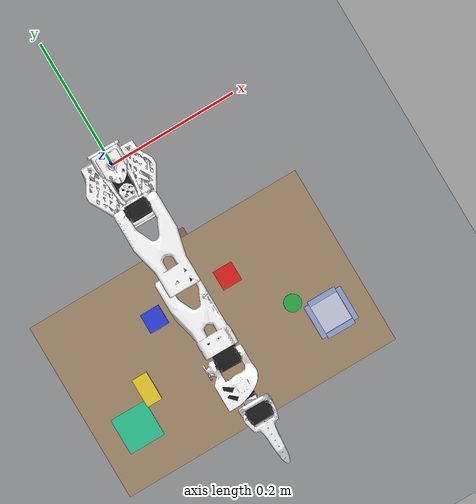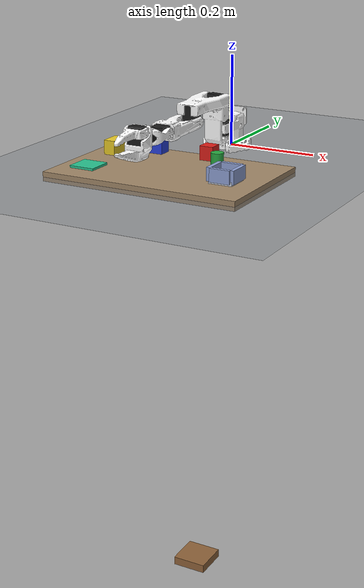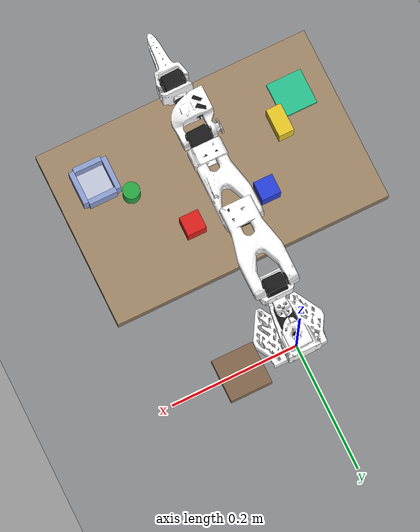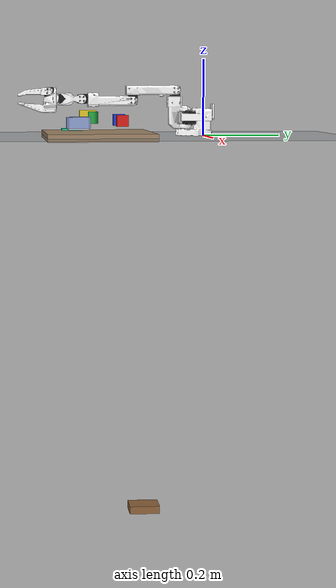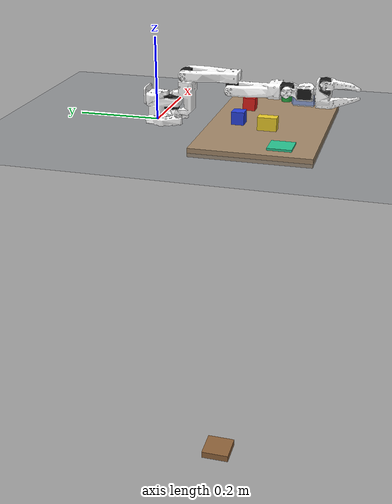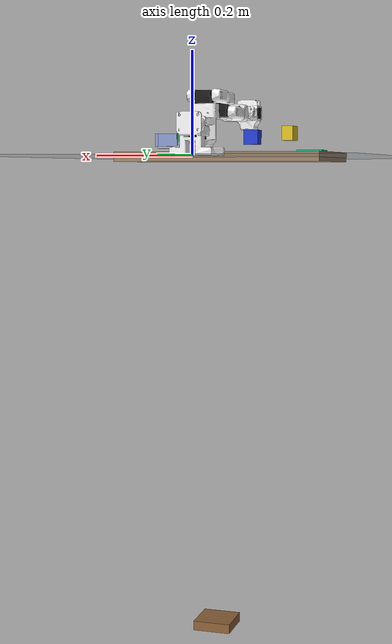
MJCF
<mujoco model="so100_tabletop">
  <include file="so_arm100.xml"/>

  <option timestep="0.002" gravity="0 0 -9.81"/>

  <visual>
    <headlight diffuse="0.6 0.6 0.6" ambient="0.35 0.35 0.35" specular="0 0 0"/>
    <global azimuth="140" elevation="-25" offwidth="512" offheight="512"/>
  </visual>

  <asset>
    <texture type="skybox" builtin="gradient" rgb1="0.75 0.78 0.82" rgb2="0.35 0.38 0.42" width="512" height="512"/>
    <material name="table_mat" rgba="0.62 0.52 0.40 1"/>
    <material name="floor_mat" rgba="0.45 0.47 0.50 1"/>
  </asset>

  <worldbody>
    <light name="key" pos="0.2 -0.1 0.8" dir="0 0 -1" directional="true" diffuse="0.8 0.8 0.8"/>
    <geom name="floor" type="plane" size="0 0 0.05" material="floor_mat"/>
    <geom name="table" type="box" pos="0 -0.28 0.0" size="0.22 0.14 0.01" material="table_mat" friction="1 0.05 0.001"/>

    <body name="red_cube" pos="0.06 -0.22 0.04">
      <freejoint name="red_cube_j"/>
      <geom name="red_cube" type="box" size="0.015 0.015 0.015" mass="0.04" rgba="0.85 0.12 0.10 1" friction="1.2 0.05 0.001"/>
    </body>
    <body name="blue_cube" pos="-0.06 -0.22 0.04">
      <freejoint name="blue_cube_j"/>
      <geom name="blue_cube" type="box" size="0.015 0.015 0.015" mass="0.04" rgba="0.15 0.25 0.85 1" friction="1.2 0.05 0.001"/>
    </body>
    <body name="green_cylinder" pos="0.12 -0.30 0.05">
      <freejoint name="green_cylinder_j"/>
      <geom name="green_cylinder" type="cylinder" size="0.013 0.015" mass="0.04" rgba="0.15 0.65 0.25 1" condim="6" friction="1.0 0.05 0.02"/>
    </body>
    <body name="yellow_block" pos="-0.12 -0.30 0.05">
      <freejoint name="yellow_block_j"/>
      <geom name="yellow_block" type="box" size="0.012 0.022 0.015" mass="0.05" rgba="0.90 0.78 0.15 1" friction="1.2 0.05 0.001"/>
    </body>

    <body name="bowl" mocap="true" pos="0.16 -0.34 0.02">
      <geom name="bowl_floor" type="box" size="0.026 0.026 0.004" pos="0 0 0.004" rgba="0.75 0.78 0.85 1" friction="1 0.05 0.001"/>
      <geom name="bowl_px" type="box" size="0.004 0.026 0.014" pos="0.026 0 0.018" rgba="0.55 0.62 0.82 1"/>
      <geom name="bowl_nx" type="box" size="0.004 0.026 0.014" pos="-0.026 0 0.018" rgba="0.55 0.62 0.82 1"/>
      <geom name="bowl_py" type="box" size="0.022 0.004 0.014" pos="0 0.026 0.018" rgba="0.55 0.62 0.82 1"/>
      <geom name="bowl_ny" type="box" size="0.022 0.004 0.014" pos="0 -0.026 0.018" rgba="0.55 0.62 0.82 1"/>
    </body>
    <body name="marker" mocap="true" pos="-0.16 -0.34 0.012">
      <geom name="marker" type="box" size="0.028 0.028 0.003" rgba="0.15 0.75 0.55 1"/>
    </body>
    <body name="platform" mocap="true" pos="0 -0.16 -1">
      <geom name="platform" type="box" size="0.04 0.04 0.01" rgba="0.55 0.38 0.22 1" friction="1.2 0.05 0.001"/>
    </body>

    <camera name="main" mode="fixed" pos="0.48 -0.18 0.22" xyaxes="0 1 0 -0.3 0 0.95"/>
    <camera name="watch" mode="fixed" pos="0.48 -0.18 0.22" xyaxes="0 1 0 -0.3 0 0.95"/>
  </worldbody>
</mujoco>

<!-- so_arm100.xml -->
<!-- Modified from Google DeepMind MuJoCo Menagerie's trs_so_arm100 model for this tabletop experiment. -->
<mujoco model="so_arm100">
  <compiler angle="radian" meshdir="assets/"/>

  <option cone="elliptic" impratio="10"/>

  <asset>
    <material name="white" rgba="1 1 1 1"/>
    <material name="black" rgba="0.1 0.1 0.1 1"/>

    <mesh name="Base" file="Base.stl"/>
    <mesh name="Base_Motor" file="Base_Motor.stl"/>
    <mesh name="Rotation_Pitch" file="Rotation_Pitch.stl"/>
    <mesh name="Rotation_Pitch_Motor" file="Rotation_Pitch_Motor.stl"/>
    <mesh name="Upper_Arm" file="Upper_Arm.stl"/>
    <mesh name="Upper_Arm_Motor" file="Upper_Arm_Motor.stl"/>
    <mesh name="Lower_Arm" file="Lower_Arm.stl"/>
    <mesh name="Lower_Arm_Motor" file="Lower_Arm_Motor.stl"/>
    <mesh name="Wrist_Pitch_Roll" file="Wrist_Pitch_Roll.stl"/>
    <mesh name="Wrist_Pitch_Roll_Motor" file="Wrist_Pitch_Roll_Motor.stl"/>
    <mesh name="Fixed_Jaw" file="Fixed_Jaw.stl"/>
    <mesh name="Fixed_Jaw_Motor" file="Fixed_Jaw_Motor.stl"/>
    <mesh name="Fixed_Jaw_Collision_1" file="Fixed_Jaw_Collision_1.stl"/>
    <mesh name="Fixed_Jaw_Collision_2" file="Fixed_Jaw_Collision_2.stl"/>
    <mesh name="Moving_Jaw" file="Moving_Jaw.stl"/>
    <mesh name="Moving_Jaw_Collision_1" file="Moving_Jaw_Collision_1.stl"/>
    <mesh name="Moving_Jaw_Collision_2" file="Moving_Jaw_Collision_2.stl"/>
    <mesh name="Moving_Jaw_Collision_3" file="Moving_Jaw_Collision_3.stl"/>
  </asset>

  <default>
    <default class="so_arm100">
      <joint frictionloss="0.1" armature="0.1"/>
      <position kp="400" dampratio="1" forcerange="-3.5 3.5"/>
      <default class="Rotation">
        <joint axis="0 1 0" range="-1.92 1.92"/>
      </default>
      <default class="Pitch">
        <joint axis="1 0 0" range="-3.32 0.174"/>
      </default>
      <default class="Elbow">
        <joint axis="1 0 0" range="-0.174 3.14"/>
      </default>
      <default class="Wrist_Pitch">
        <joint axis="1 0 0" range="-1.66 1.66"/>
      </default>
      <default class="Wrist_Roll">
        <joint axis="0 1 0" range="-2.79 2.79"/>
      </default>
      <default class="Jaw">
        <joint axis="0 0 1" range="-0.174 1.75"/>
      </default>
      <default class="visual">
        <geom type="mesh" contype="0" conaffinity="0" density="0" group="2" material="white"/>
        <default class="motor_visual">
          <geom material="black"/>
        </default>
      </default>
      <default class="collision">
        <geom group="3" type="mesh" material="white"/>
        <default class="finger_collision">
          <geom type="box" solimp="2 1 0.01" solref="0.01 1" friction="1 0.005 0.0001"/>
        </default>
      </default>
    </default>
  </default>

  <worldbody>
    <body name="Base" childclass="so_arm100">
      <geom type="mesh" mesh="Base" class="visual"/>
      <geom type="mesh" mesh="Base_Motor" class="motor_visual"/>
      <geom type="mesh" mesh="Base" class="collision"/>
      <body name="Rotation_Pitch" pos="0 -0.0452 0.0165" quat="0.707105 0.707108 0 0">
        <inertial pos="-9.07886e-05 0.0590972 0.031089" quat="0.363978 0.441169 -0.623108 0.533504" mass="0.119226"
          diaginertia="5.94278e-05 5.89975e-05 3.13712e-05"/>
        <joint name="Rotation" class="Rotation"/>
        <geom type="mesh" mesh="Rotation_Pitch" class="visual"/>
        <geom type="mesh" mesh="Rotation_Pitch_Motor" class="motor_visual"/>
        <geom type="mesh" mesh="Rotation_Pitch" class="collision"/>
        <body name="Upper_Arm" pos="0 0.1025 0.0306" euler="1.57079 0 0">
          <inertial pos="-1.72052e-05 0.0701802 0.00310545" quat="0.50104 0.498994 -0.493562 0.50632" mass="0.162409"
            diaginertia="0.000213312 0.000167164 7.01522e-05"/>
          <joint name="Pitch" class="Pitch"/>
          <geom type="mesh" mesh="Upper_Arm" class="visual"/>
          <geom type="mesh" mesh="Upper_Arm_Motor" class="motor_visual"/>
          <geom type="mesh" mesh="Upper_Arm" class="collision"/>
          <body name="Lower_Arm" pos="0 0.11257 0.028" euler="-1.57079 0 0">
            <inertial pos="-0.00339604 0.00137796 0.0768007" quat="0.701995 0.0787996 0.0645626 0.704859"
              mass="0.147968" diaginertia="0.000138803 0.000107748 4.84242e-05"/>
            <joint name="Elbow" class="Elbow"/>
            <geom type="mesh" mesh="Lower_Arm" class="visual"/>
            <geom type="mesh" mesh="Lower_Arm_Motor" class="motor_visual"/>
            <geom type="mesh" mesh="Lower_Arm" class="collision"/>
            <body name="Wrist_Pitch_Roll" pos="0 0.0052 0.1349" euler="-1.57079 0 0">
              <inertial pos="-0.00852653 -0.0352279 -2.34622e-05" quat="-0.0522806 0.705235 0.0549524 0.704905"
                mass="0.0661321" diaginertia="3.45403e-05 2.39041e-05 1.94704e-05"/>
              <joint name="Wrist_Pitch" class="Wrist_Pitch"/>
              <geom type="mesh" mesh="Wrist_Pitch_Roll" class="visual"/>
              <geom type="mesh" mesh="Wrist_Pitch_Roll_Motor" class="motor_visual"/>
              <geom type="mesh" mesh="Wrist_Pitch_Roll" class="collision"/>
              <body name="Fixed_Jaw" pos="0 -0.0601 0" euler="0 1.57079 0">
                <inertial pos="0.00552377 -0.0280167 0.000483583" quat="0.41836 0.620891 -0.350644 0.562599"
                  mass="0.0929859" diaginertia="5.03136e-05 4.64098e-05 2.72961e-05"/>
                <joint name="Wrist_Roll" class="Wrist_Roll"/>
                <geom type="mesh" mesh="Fixed_Jaw" class="visual"/>
                <geom type="mesh" mesh="Fixed_Jaw_Motor" class="motor_visual"/>
                <geom type="mesh" mesh="Fixed_Jaw_Collision_1" class="collision"/>
                <geom type="mesh" mesh="Fixed_Jaw_Collision_2" class="collision"/>
                <geom class="finger_collision" name="fixed_jaw_pad_1" size="0.001 0.005 0.004" pos="0.0089 -0.1014 0"/>
                <geom class="finger_collision" name="fixed_jaw_pad_2" size="0.001 0.005 0.006" pos="0.0109 -0.0914 0"/>
                <geom class="finger_collision" name="fixed_jaw_pad_3" size="0.001 0.01 0.007" pos="0.0126 -0.0768 0"/>
                <geom class="finger_collision" name="fixed_jaw_pad_4" size="0.001 0.01 0.008" pos="0.0143 -0.0572 0"/>
                <site name="tcp" pos="0 -0.092 0" size="0.004" group="5"/>
                <body name="Moving_Jaw" pos="-0.0202 -0.0244 0" quat="1.34924e-11 -3.67321e-06 1 -3.67321e-06">
                  <inertial pos="-0.00161745 -0.0303473 0.000449646" quat="0.696562 0.716737 -0.0239844 -0.0227026"
                    mass="0.0202444" diaginertia="1.11265e-05 8.99651e-06 2.99548e-06"/>
                  <joint name="Jaw" class="Jaw"/>
                  <geom type="mesh" mesh="Moving_Jaw" class="visual"/>
                  <geom type="mesh" mesh="Moving_Jaw_Collision_1" class="collision"/>
                  <geom type="mesh" mesh="Moving_Jaw_Collision_2" class="collision"/>
                  <geom type="mesh" mesh="Moving_Jaw_Collision_3" class="collision"/>
                  <geom class="finger_collision" name="moving_jaw_pad_1" size="0.001 0.005 0.004"
                    pos="-0.0113 -0.077 0"/>
                  <geom class="finger_collision" name="moving_jaw_pad_2" size="0.001 0.005 0.006"
                    pos="-0.0093 -0.067 0"/>
                  <geom class="finger_collision" name="moving_jaw_pad_3" size="0.001 0.01 0.006"
                    pos="-0.0073 -0.055 0"/>
                  <geom class="finger_collision" name="moving_jaw_pad_4" size="0.001 0.01 0.008"
                    pos="-0.0073 -0.035 0"/>
                </body>
              </body>
            </body>
          </body>
        </body>
      </body>
    </body>
  </worldbody>

  <actuator>
    <position class="Rotation" name="Rotation" joint="Rotation" inheritrange="1"/>
    <position class="Pitch" name="Pitch" joint="Pitch" inheritrange="1"/>
    <position class="Elbow" name="Elbow" joint="Elbow" inheritrange="1"/>
    <position class="Wrist_Pitch" name="Wrist_Pitch" joint="Wrist_Pitch" inheritrange="1"/>
    <position class="Wrist_Roll" name="Wrist_Roll" joint="Wrist_Roll" inheritrange="1"/>
    <position class="Jaw" name="Jaw" joint="Jaw" inheritrange="1"/>
  </actuator>

  <contact>
    <exclude body1="Base" body2="Rotation_Pitch"/>
  </contact>

  <keyframe>
    <key name="home" qpos="0 -1.57 1.57 1.57 -1.57 0" ctrl="0 -1.57 1.57 1.57 -1.57 0"/>
    <key name="rest" qpos="0 -3.32 3.11 1.18 0 -0.174" ctrl="0 -3.32 3.11 1.18 0 -0.174"/>
  </keyframe>
</mujoco>
